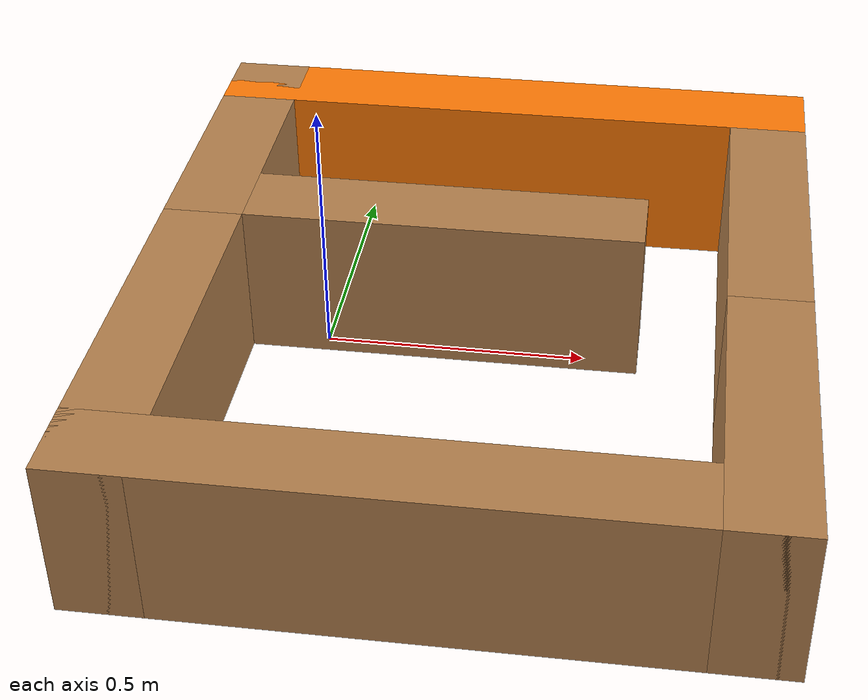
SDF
<?xml version='1.0'?>
<sdf version='1.7'>
  <model name='test4'>
    <pose>0.305 -0.11 0 0 -0 0</pose>
    <link name='Wall_12'>
      <collision name='Wall_12_Collision'>
        <geometry>
          <box>
            <size>0.6 0.15 0.3</size>
          </box>
        </geometry>
        <pose>0 0 0.15 0 -0 0</pose>
      </collision>
      <visual name='Wall_12_Visual'>
        <pose>0 0 0.15 0 -0 0</pose>
        <geometry>
          <box>
            <size>0.6 0.15 0.3</size>
          </box>
        </geometry>
        <material>
          <script>
            <uri>file://media/materials/scripts/gazebo.material</uri>
            <name>Gazebo/Wood</name>
          </script>
          <ambient>0.996078 0.47451 0.0196078 1</ambient>
        </material>
        <meta>
          <layer>0</layer>
        </meta>
      </visual>
      <pose>-0.525 0.375 0 0 -0 -1.5708</pose>
    </link>
    <link name='Wall_14'>
      <collision name='Wall_14_Collision'>
        <geometry>
          <box>
            <size>0.9 0.15 0.3</size>
          </box>
        </geometry>
        <pose>0 0 0.15 0 -0 0</pose>
      </collision>
      <visual name='Wall_14_Visual'>
        <pose>0 0 0.15 0 -0 0</pose>
        <geometry>
          <box>
            <size>0.9 0.15 0.3</size>
          </box>
        </geometry>
        <material>
          <script>
            <uri>file://media/materials/scripts/gazebo.material</uri>
            <name>Gazebo/Wood</name>
          </script>
          <ambient>0.996078 0.47451 0.0196078 1</ambient>
        </material>
        <meta>
          <layer>0</layer>
        </meta>
      </visual>
      <pose>-0.525 -0.225 0 0 -0 -1.5708</pose>
    </link>
    <link name='Wall_16'>
      <collision name='Wall_16_Collision'>
        <geometry>
          <box>
            <size>0.9 0.15 0.3</size>
          </box>
        </geometry>
        <pose>0 0 0.15 0 -0 0</pose>
      </collision>
      <visual name='Wall_16_Visual'>
        <pose>0 0 0.15 0 -0 0</pose>
        <geometry>
          <box>
            <size>0.9 0.15 0.3</size>
          </box>
        </geometry>
        <material>
          <script>
            <uri>file://media/materials/scripts/gazebo.material</uri>
            <name>Gazebo/Wood</name>
          </script>
          <ambient>0.996078 0.47451 0.0196078 1</ambient>
        </material>
        <meta>
          <layer>0</layer>
        </meta>
      </visual>
      <pose>-0.15 0.15 0 0 -0 0</pose>
    </link>
    <link name='Wall_3'>
      <collision name='Wall_3_Collision'>
        <geometry>
          <box>
            <size>1.2 0.15 0.3</size>
          </box>
        </geometry>
        <pose>0 0 0.15 0 -0 0</pose>
      </collision>
      <visual name='Wall_3_Visual'>
        <pose>0 0 0.15 0 -0 0</pose>
        <geometry>
          <box>
            <size>1.2 0.15 0.3</size>
          </box>
        </geometry>
        <material>
          <script>
            <uri>file://media/materials/scripts/gazebo.material</uri>
            <name>Gazebo/Wood</name>
          </script>
          <ambient>0.996078 0.47451 0.0196078 1</ambient>
        </material>
        <meta>
          <layer>0</layer>
        </meta>
      </visual>
      <pose>0 -0.6 0 0 -0 0</pose>
    </link>
    <link name='Wall_5'>
      <collision name='Wall_5_Collision'>
        <geometry>
          <box>
            <size>0.6 0.15 0.3</size>
          </box>
        </geometry>
        <pose>0 0 0.15 0 -0 0</pose>
      </collision>
      <visual name='Wall_5_Visual'>
        <pose>0 0 0.15 0 -0 0</pose>
        <geometry>
          <box>
            <size>0.6 0.15 0.3</size>
          </box>
        </geometry>
        <material>
          <script>
            <uri>file://media/materials/scripts/gazebo.material</uri>
            <name>Gazebo/Wood</name>
          </script>
          <ambient>0.996078 0.47451 0.0196078 1</ambient>
        </material>
        <meta>
          <layer>0</layer>
        </meta>
      </visual>
      <pose>0.525 -0.375 0 0 -0 1.5708</pose>
    </link>
    <link name='Wall_7'>
      <collision name='Wall_7_Collision'>
        <geometry>
          <box>
            <size>0.9 0.15 0.3</size>
          </box>
        </geometry>
        <pose>0 0 0.15 0 -0 0</pose>
      </collision>
      <visual name='Wall_7_Visual'>
        <pose>0 0 0.15 0 -0 0</pose>
        <geometry>
          <box>
            <size>0.9 0.15 0.3</size>
          </box>
        </geometry>
        <material>
          <script>
            <uri>file://media/materials/scripts/gazebo.material</uri>
            <name>Gazebo/Wood</name>
          </script>
          <ambient>0.996078 0.47451 0.0196078 1</ambient>
        </material>
        <meta>
          <layer>0</layer>
        </meta>
      </visual>
      <pose>0.525 0.225 0 0 -0 1.5708</pose>
    </link>
    <link name='Wall_9'>
      <collision name='Wall_9_Collision'>
        <geometry>
          <box>
            <size>1.2 0.15 0.3</size>
          </box>
        </geometry>
        <pose>0 0 0.15 0 -0 0</pose>
      </collision>
      <visual name='Wall_9_Visual'>
        <pose>0 0 0.15 0 -0 0</pose>
        <geometry>
          <box>
            <size>1.2 0.15 0.3</size>
          </box>
        </geometry>
        <material>
          <script>
            <uri>file://media/materials/scripts/gazebo.material</uri>
            <name>Gazebo/Grey</name>
          </script>
          <ambient>0.996078 0.47451 0.0196078 1</ambient>
        </material>
        <meta>
          <layer>0</layer>
        </meta>
      </visual>
      <pose>0 0.6 0 0 -0 3.14159</pose>
    </link>
    <static>1</static>
  </model>
</sdf>
